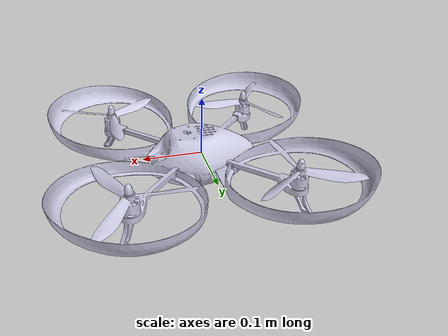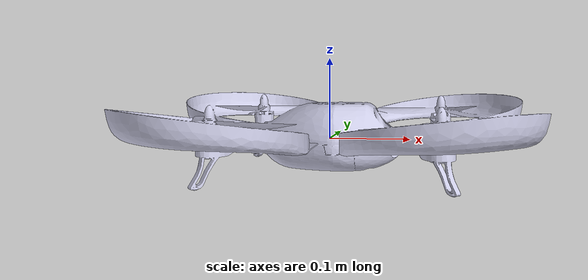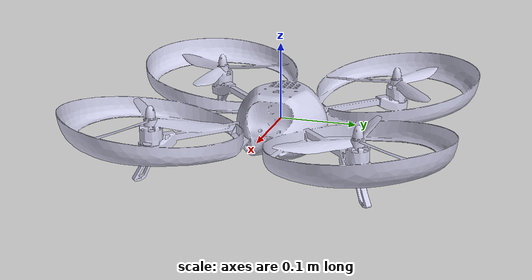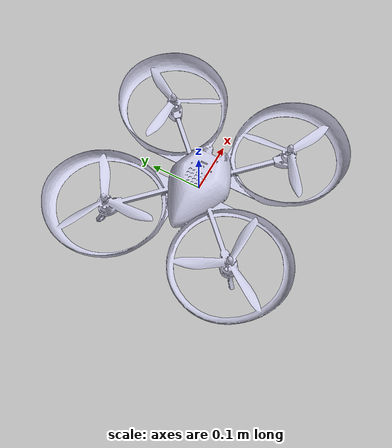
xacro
<?xml version="1.0"?>

<robot name="spiri" xmlns:xacro="http://ros.org/wiki/xacro">
  <xacro:property name="M_PI" value="3.1415926535897931" />

  <link name="base_link">
    <inertial>
      <origin xyz="0.0 -0.0 0.0" rpy="0 0 0" />

      <mass value="0.399875434000126" />

      <inertia
        ixx="0.00346570293331384"
        ixy="-8.6357788144988E-06"
        ixz="-1.09098718333656E-07"
        iyy="0.00680202593758125"
        iyz="1.98456084936431E-06"
        izz="0.00354550223356006" />
    </inertial>

    <visual>
      <origin xyz="0 0 0" rpy="0 0 -1.57" />
      <geometry>
        <mesh filename="package://spiri_description/meshes/spiri.dae" />
      </geometry>

      <!-- This sets the color in rviz, but not gazebo -->
      <material name="SpiriWhite">
        <color rgba="0.8 0.8 0.9 1.0"/>
      </material>
    </visual>

    <collision>
      <origin xyz="0 0 0" rpy="0 0 0" />
      <geometry>
        <box size="0.33 0.33 0.08" />
      </geometry>
    </collision>
 </link>

 <gazebo reference="base_link">
	 <turnGravityOff>false</turnGravityOff>
 </gazebo>

  <joint name="base_imu_joint" type="fixed">
    <origin xyz="0 0 0" rpy="0 0 0" />
    <parent link="base_link"/>
    <child link="imu_link" />
  </joint>

  <link name="imu_link" />

  <joint name="base_range_joint" type="fixed">
    <origin xyz="0 0 -0.05" rpy="0 ${M_PI/2} 0" />
    <parent link="base_link"/>
    <child link="range_link" />
  </joint>

  <link name="range_link" />

  <joint name="base_mag_joint" type="fixed">
    <origin xyz="0 0 0" rpy="0 0 0" />
    <parent link="base_link"/>
    <child link="mag_link" />
  </joint>

  <link name="mag_link" />

</robot>
